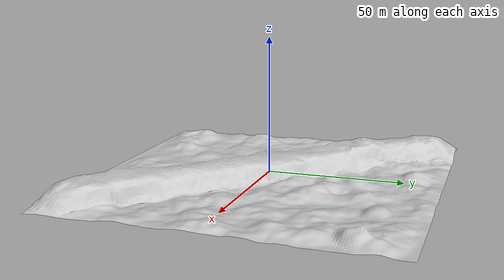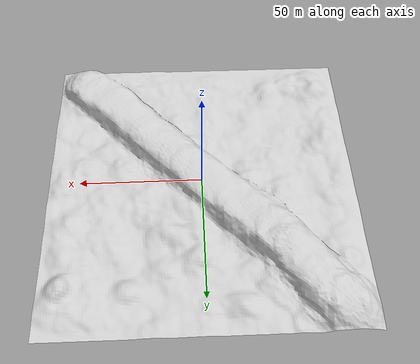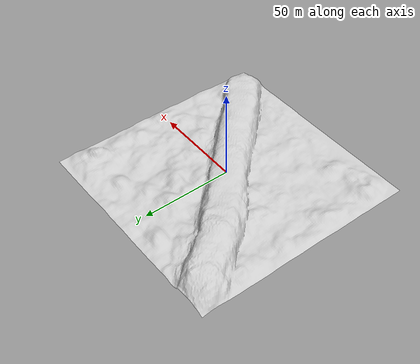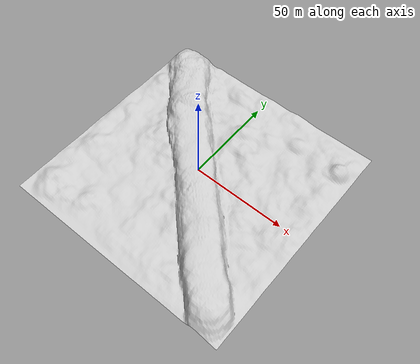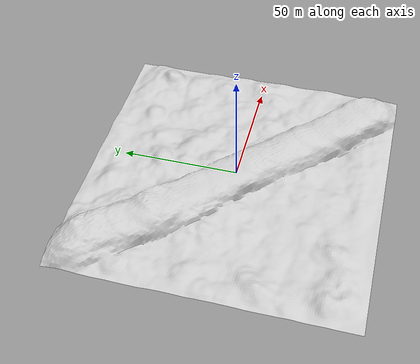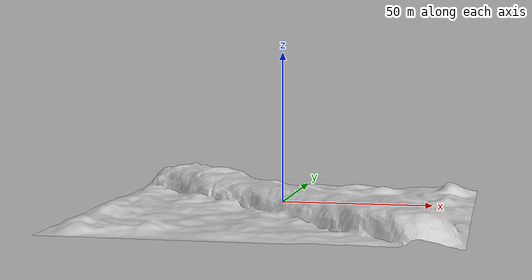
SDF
<?xml version="1.0" ?>
<sdf version="1.5">
    <model name='terreno_con_edge'>
      <pose frame=''>0 0 0 0 -0 0</pose>
      <static>1</static>
      <link name='link'>
        <collision name='collision'>
          <geometry>
            <mesh>
              <uri>model://assets/meshes/terreno_con_edge.dae</uri>
            </mesh>
          </geometry>
          <max_contacts>10</max_contacts>
          <surface>
            <contact>
              <ode/>
            </contact>
            <bounce/>
            <friction>
              <ode/>
            </friction>
          </surface>
        </collision>
        <visual name='visual'>
          <geometry>
            <mesh>
              <uri>model://assets/meshes/terreno_con_edge.dae</uri>
            </mesh>
          </geometry>
          <material>
            <script>
              <uri>model://assets/materials/scripts</uri>
              <uri>model://assets/materials/textures/sand</uri>
	      <uri>model://assets/materials/textures/terrain</uri>
	      <uri>model://assets/materials/textures/caustics</uri>
	      <uri>model://assets/materials/textures/rocks/3D_pattern_66/pattern_391</uri>
              <name>Underwater/Sand_And_Rocks_With_Caustics5</name>
            </script>
          </material>
        </visual>
        <self_collide>0</self_collide>
        <kinematic>0</kinematic>
        <gravity>0</gravity>
      </link>
    </model>
</sdf>
